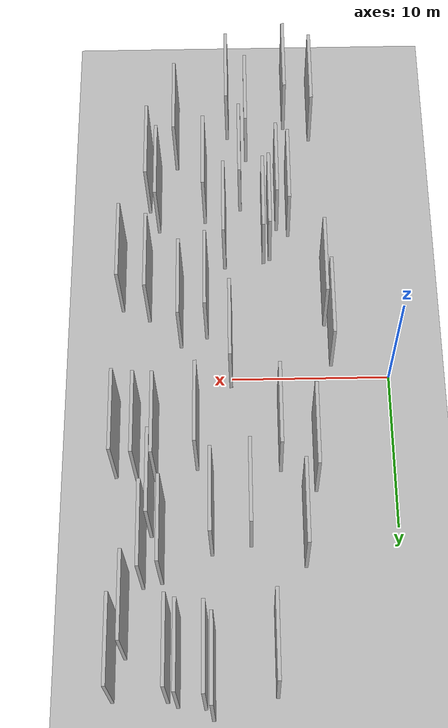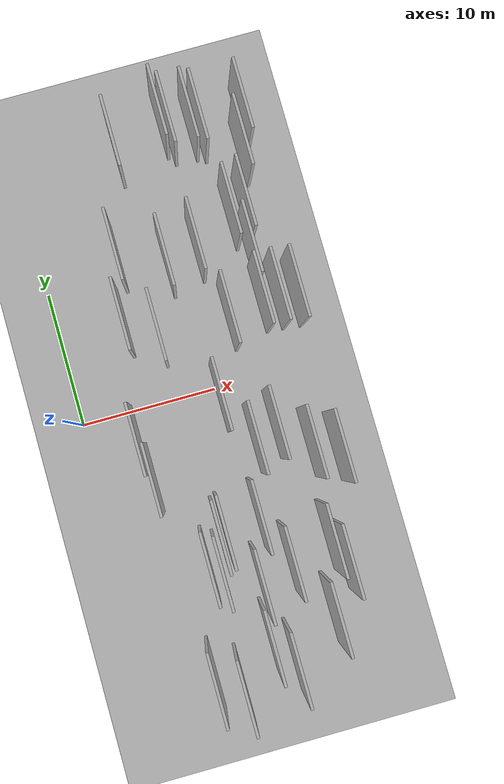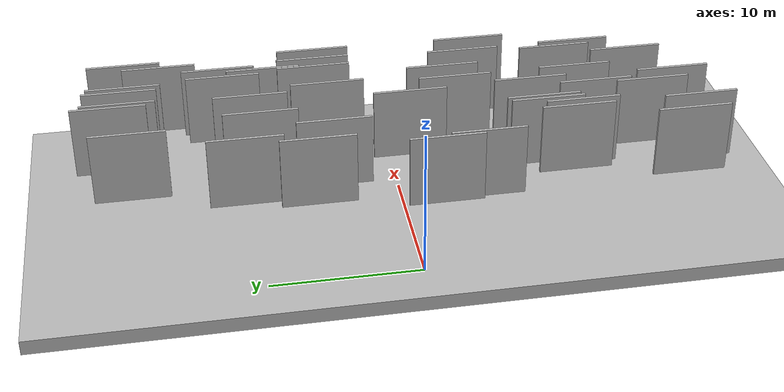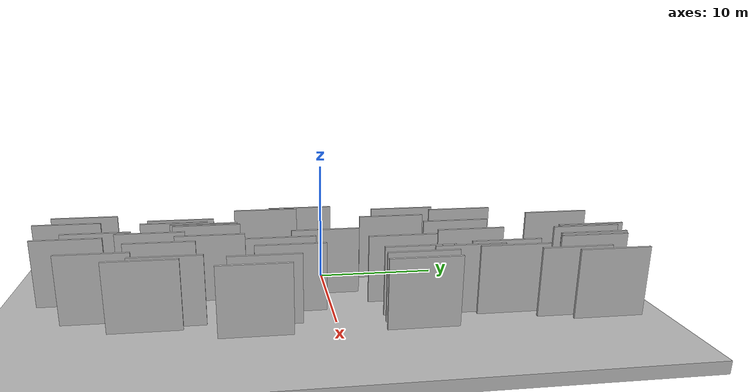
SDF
<?xml version="1.0" encoding="utf-8"?>

<sdf version="1.6">

   <world name="default">

      <gui fullscreen="0">

         <camera name="user_camera">

            <pose>-15 0 4.57585 0 0 0</pose>

            <view_controller>orbit</view_controller>

         </camera>

      </gui>

      <scene>

         <sky>

           <clouds>

             <speed>12</speed>

           </clouds>

         </sky>

         <ambient>0.4 0.4 0.4 1</ambient>

         <background>0.7 0.7 0.7 1</background>

         <shadows>1</shadows>

      </scene>

      <gravity>0 0 -9.8066</gravity>

      <magnetic_field>6e-06 2.3e-05 -4.2e-05</magnetic_field>

      <physics default="0" name="default_physics" type="ode">

         <ode>

            <solver>

               <type>quick</type>

               <iters>10</iters>

               <sor>1.0</sor>

               <use_dynamic_moi_rescaling>0</use_dynamic_moi_rescaling>

            </solver>

            <constraints>

               <cfm>0</cfm>

               <erp>0.2</erp>

               <contact_max_correcting_vel>100</contact_max_correcting_vel>

               <contact_surface_layer>0.001</contact_surface_layer>

            </constraints>

         </ode>

         <max_step_size>0.004</max_step_size>

         <real_time_factor>1</real_time_factor>

         <real_time_update_rate>250</real_time_update_rate>

      </physics>

      <light name="sun" type="directional">

         <cast_shadows>1</cast_shadows>

         <pose>0 0 10 0 0 0</pose>

         <diffuse>0.8 0.8 0.8 1</diffuse>

         <specular>0.2 0.2 0.2 1</specular>

         <attenuation>

            <range>1000</range>

            <constant>0.9</constant>

            <linear>0.01</linear>

            <quadratic>0.001</quadratic>

         </attenuation>

         <direction>-0.5 0.1 -0.9</direction>

      </light>

      <include>

         <name>ground_plane_1</name>

         <uri>model://HANNAS_ground_plane</uri>

         <pose>0 0 0  0 0 0</pose>

      </include>

      <include>

         <name>ground_plane_2</name>

         <uri>model://HANNAS_ground_plane</uri>

         <pose>100 0 0  0 0 0</pose>

      </include>

      <model name="HANNAS_wall_1">

         <static>1</static>

         <pose frame="">5.8081 10.5907 2.5 0.000000 0.000000 1.570796</pose>

         <link name="link">

            <pose frame="">0 0 2.50 0 0 0</pose>

            <collision name="collision">

               <geometry>

                  <box>

                     <size>5.00 0.2 5.00</size>

                  </box>

               </geometry>

               <max_contacts>10</max_contacts>

               <surface>

                  <contact>

                     <ode/>

                  </contact>

                  <bounce/>

                  <friction>

                     <torsional>

                        <ode/>

                     </torsional>

                     <ode/>

                  </friction>

               </surface>

            </collision>

            <visual name="visual">

               <cast_shadows>0</cast_shadows>

               <geometry>

                  <box>

                     <size>5.00 0.2 5.00</size>

                  </box>

               </geometry>

               <material>

                  <script>

                     <uri>model://HANNAS_wall/materials/scripts</uri>

                     <uri>model://HANNAS_wall/materials/textures</uri>

                     <name>vrc/HANNAS_wall</name>

                  </script>

               </material>

            </visual>

            <self_collide>0</self_collide>

            <enable_wind>0</enable_wind>

            <kinematic>0</kinematic>

         </link>

      </model>

      <model name="HANNAS_wall_2">

         <static>1</static>

         <pose frame="">11.6229 18.5707 2.5 0.000000 0.000000 1.570796</pose>

         <link name="link">

            <pose frame="">0 0 2.50 0 0 0</pose>

            <collision name="collision">

               <geometry>

                  <box>

                     <size>5.00 0.2 5.00</size>

                  </box>

               </geometry>

               <max_contacts>10</max_contacts>

               <surface>

                  <contact>

                     <ode/>

                  </contact>

                  <bounce/>

                  <friction>

                     <torsional>

                        <ode/>

                     </torsional>

                     <ode/>

                  </friction>

               </surface>

            </collision>

            <visual name="visual">

               <cast_shadows>0</cast_shadows>

               <geometry>

                  <box>

                     <size>5.00 0.2 5.00</size>

                  </box>

               </geometry>

               <material>

                  <script>

                     <uri>model://HANNAS_wall/materials/scripts</uri>

                     <uri>model://HANNAS_wall/materials/textures</uri>

                     <name>vrc/HANNAS_wall</name>

                  </script>

               </material>

            </visual>

            <self_collide>0</self_collide>

            <enable_wind>0</enable_wind>

            <kinematic>0</kinematic>

         </link>

      </model>

      <model name="HANNAS_wall_3">

         <static>1</static>

         <pose frame="">10.0517 -0.8519 2.5 0.000000 0.000000 1.570796</pose>

         <link name="link">

            <pose frame="">0 0 2.50 0 0 0</pose>

            <collision name="collision">

               <geometry>

                  <box>

                     <size>5.00 0.2 5.00</size>

                  </box>

               </geometry>

               <max_contacts>10</max_contacts>

               <surface>

                  <contact>

                     <ode/>

                  </contact>

                  <bounce/>

                  <friction>

                     <torsional>

                        <ode/>

                     </torsional>

                     <ode/>

                  </friction>

               </surface>

            </collision>

            <visual name="visual">

               <cast_shadows>0</cast_shadows>

               <geometry>

                  <box>

                     <size>5.00 0.2 5.00</size>

                  </box>

               </geometry>

               <material>

                  <script>

                     <uri>model://HANNAS_wall/materials/scripts</uri>

                     <uri>model://HANNAS_wall/materials/textures</uri>

                     <name>vrc/HANNAS_wall</name>

                  </script>

               </material>

            </visual>

            <self_collide>0</self_collide>

            <enable_wind>0</enable_wind>

            <kinematic>0</kinematic>

         </link>

      </model>

      <model name="HANNAS_wall_4">

         <static>1</static>

         <pose frame="">11.1998 19.1837 2.5 0.000000 0.000000 1.570796</pose>

         <link name="link">

            <pose frame="">0 0 2.50 0 0 0</pose>

            <collision name="collision">

               <geometry>

                  <box>

                     <size>5.00 0.2 5.00</size>

                  </box>

               </geometry>

               <max_contacts>10</max_contacts>

               <surface>

                  <contact>

                     <ode/>

                  </contact>

                  <bounce/>

                  <friction>

                     <torsional>

                        <ode/>

                     </torsional>

                     <ode/>

                  </friction>

               </surface>

            </collision>

            <visual name="visual">

               <cast_shadows>0</cast_shadows>

               <geometry>

                  <box>

                     <size>5.00 0.2 5.00</size>

                  </box>

               </geometry>

               <material>

                  <script>

                     <uri>model://HANNAS_wall/materials/scripts</uri>

                     <uri>model://HANNAS_wall/materials/textures</uri>

                     <name>vrc/HANNAS_wall</name>

                  </script>

               </material>

            </visual>

            <self_collide>0</self_collide>

            <enable_wind>0</enable_wind>

            <kinematic>0</kinematic>

         </link>

      </model>

      <model name="HANNAS_wall_5">

         <static>1</static>

         <pose frame="">7.8874 -9.5599 2.5 0.000000 0.000000 1.570796</pose>

         <link name="link">

            <pose frame="">0 0 2.50 0 0 0</pose>

            <collision name="collision">

               <geometry>

                  <box>

                     <size>5.00 0.2 5.00</size>

                  </box>

               </geometry>

               <max_contacts>10</max_contacts>

               <surface>

                  <contact>

                     <ode/>

                  </contact>

                  <bounce/>

                  <friction>

                     <torsional>

                        <ode/>

                     </torsional>

                     <ode/>

                  </friction>

               </surface>

            </collision>

            <visual name="visual">

               <cast_shadows>0</cast_shadows>

               <geometry>

                  <box>

                     <size>5.00 0.2 5.00</size>

                  </box>

               </geometry>

               <material>

                  <script>

                     <uri>model://HANNAS_wall/materials/scripts</uri>

                     <uri>model://HANNAS_wall/materials/textures</uri>

                     <name>vrc/HANNAS_wall</name>

                  </script>

               </material>

            </visual>

            <self_collide>0</self_collide>

            <enable_wind>0</enable_wind>

            <kinematic>0</kinematic>

         </link>

      </model>

      <model name="HANNAS_wall_6">

         <static>1</static>

         <pose frame="">11.2592 9.8154 2.5 0.000000 0.000000 1.570796</pose>

         <link name="link">

            <pose frame="">0 0 2.50 0 0 0</pose>

            <collision name="collision">

               <geometry>

                  <box>

                     <size>5.00 0.2 5.00</size>

                  </box>

               </geometry>

               <max_contacts>10</max_contacts>

               <surface>

                  <contact>

                     <ode/>

                  </contact>

                  <bounce/>

                  <friction>

                     <torsional>

                        <ode/>

                     </torsional>

                     <ode/>

                  </friction>

               </surface>

            </collision>

            <visual name="visual">

               <cast_shadows>0</cast_shadows>

               <geometry>

                  <box>

                     <size>5.00 0.2 5.00</size>

                  </box>

               </geometry>

               <material>

                  <script>

                     <uri>model://HANNAS_wall/materials/scripts</uri>

                     <uri>model://HANNAS_wall/materials/textures</uri>

                     <name>vrc/HANNAS_wall</name>

                  </script>

               </material>

            </visual>

            <self_collide>0</self_collide>

            <enable_wind>0</enable_wind>

            <kinematic>0</kinematic>

         </link>

      </model>

      <model name="HANNAS_wall_7">

         <static>1</static>

         <pose frame="">4.1478 -5.0018 2.5 0.000000 0.000000 1.570796</pose>

         <link name="link">

            <pose frame="">0 0 2.50 0 0 0</pose>

            <collision name="collision">

               <geometry>

                  <box>

                     <size>5.00 0.2 5.00</size>

                  </box>

               </geometry>

               <max_contacts>10</max_contacts>

               <surface>

                  <contact>

                     <ode/>

                  </contact>

                  <bounce/>

                  <friction>

                     <torsional>

                        <ode/>

                     </torsional>

                     <ode/>

                  </friction>

               </surface>

            </collision>

            <visual name="visual">

               <cast_shadows>0</cast_shadows>

               <geometry>

                  <box>

                     <size>5.00 0.2 5.00</size>

                  </box>

               </geometry>

               <material>

                  <script>

                     <uri>model://HANNAS_wall/materials/scripts</uri>

                     <uri>model://HANNAS_wall/materials/textures</uri>

                     <name>vrc/HANNAS_wall</name>

                  </script>

               </material>

            </visual>

            <self_collide>0</self_collide>

            <enable_wind>0</enable_wind>

            <kinematic>0</kinematic>

         </link>

      </model>

      <model name="HANNAS_wall_8">

         <static>1</static>

         <pose frame="">9.3452 -13.5568 2.5 0.000000 0.000000 1.570796</pose>

         <link name="link">

            <pose frame="">0 0 2.50 0 0 0</pose>

            <collision name="collision">

               <geometry>

                  <box>

                     <size>5.00 0.2 5.00</size>

                  </box>

               </geometry>

               <max_contacts>10</max_contacts>

               <surface>

                  <contact>

                     <ode/>

                  </contact>

                  <bounce/>

                  <friction>

                     <torsional>

                        <ode/>

                     </torsional>

                     <ode/>

                  </friction>

               </surface>

            </collision>

            <visual name="visual">

               <cast_shadows>0</cast_shadows>

               <geometry>

                  <box>

                     <size>5.00 0.2 5.00</size>

                  </box>

               </geometry>

               <material>

                  <script>

                     <uri>model://HANNAS_wall/materials/scripts</uri>

                     <uri>model://HANNAS_wall/materials/textures</uri>

                     <name>vrc/HANNAS_wall</name>

                  </script>

               </material>

            </visual>

            <self_collide>0</self_collide>

            <enable_wind>0</enable_wind>

            <kinematic>0</kinematic>

         </link>

      </model>

      <model name="HANNAS_wall_9">

         <static>1</static>

         <pose frame="">3.8382 -2.2054 2.5 0.000000 0.000000 1.570796</pose>

         <link name="link">

            <pose frame="">0 0 2.50 0 0 0</pose>

            <collision name="collision">

               <geometry>

                  <box>

                     <size>5.00 0.2 5.00</size>

                  </box>

               </geometry>

               <max_contacts>10</max_contacts>

               <surface>

                  <contact>

                     <ode/>

                  </contact>

                  <bounce/>

                  <friction>

                     <torsional>

                        <ode/>

                     </torsional>

                     <ode/>

                  </friction>

               </surface>

            </collision>

            <visual name="visual">

               <cast_shadows>0</cast_shadows>

               <geometry>

                  <box>

                     <size>5.00 0.2 5.00</size>

                  </box>

               </geometry>

               <material>

                  <script>

                     <uri>model://HANNAS_wall/materials/scripts</uri>

                     <uri>model://HANNAS_wall/materials/textures</uri>

                     <name>vrc/HANNAS_wall</name>

                  </script>

               </material>

            </visual>

            <self_collide>0</self_collide>

            <enable_wind>0</enable_wind>

            <kinematic>0</kinematic>

         </link>

      </model>

      <model name="HANNAS_wall_10">

         <static>1</static>

         <pose frame="">6.9938 -12.0329 2.5 0.000000 0.000000 1.570796</pose>

         <link name="link">

            <pose frame="">0 0 2.50 0 0 0</pose>

            <collision name="collision">

               <geometry>

                  <box>

                     <size>5.00 0.2 5.00</size>

                  </box>

               </geometry>

               <max_contacts>10</max_contacts>

               <surface>

                  <contact>

                     <ode/>

                  </contact>

                  <bounce/>

                  <friction>

                     <torsional>

                        <ode/>

                     </torsional>

                     <ode/>

                  </friction>

               </surface>

            </collision>

            <visual name="visual">

               <cast_shadows>0</cast_shadows>

               <geometry>

                  <box>

                     <size>5.00 0.2 5.00</size>

                  </box>

               </geometry>

               <material>

                  <script>

                     <uri>model://HANNAS_wall/materials/scripts</uri>

                     <uri>model://HANNAS_wall/materials/textures</uri>

                     <name>vrc/HANNAS_wall</name>

                  </script>

               </material>

            </visual>

            <self_collide>0</self_collide>

            <enable_wind>0</enable_wind>

            <kinematic>0</kinematic>

         </link>

      </model>

      <model name="HANNAS_wall_11">

         <static>1</static>

         <pose frame="">10.1374 -19.2209 2.5 0.000000 0.000000 1.570796</pose>

         <link name="link">

            <pose frame="">0 0 2.50 0 0 0</pose>

            <collision name="collision">

               <geometry>

                  <box>

                     <size>5.00 0.2 5.00</size>

                  </box>

               </geometry>

               <max_contacts>10</max_contacts>

               <surface>

                  <contact>

                     <ode/>

                  </contact>

                  <bounce/>

                  <friction>

                     <torsional>

                        <ode/>

                     </torsional>

                     <ode/>

                  </friction>

               </surface>

            </collision>

            <visual name="visual">

               <cast_shadows>0</cast_shadows>

               <geometry>

                  <box>

                     <size>5.00 0.2 5.00</size>

                  </box>

               </geometry>

               <material>

                  <script>

                     <uri>model://HANNAS_wall/materials/scripts</uri>

                     <uri>model://HANNAS_wall/materials/textures</uri>

                     <name>vrc/HANNAS_wall</name>

                  </script>

               </material>

            </visual>

            <self_collide>0</self_collide>

            <enable_wind>0</enable_wind>

            <kinematic>0</kinematic>

         </link>

      </model>

      <model name="HANNAS_wall_12">

         <static>1</static>

         <pose frame="">14.6214 -11.9846 2.5 0.000000 0.000000 1.570796</pose>

         <link name="link">

            <pose frame="">0 0 2.50 0 0 0</pose>

            <collision name="collision">

               <geometry>

                  <box>

                     <size>5.00 0.2 5.00</size>

                  </box>

               </geometry>

               <max_contacts>10</max_contacts>

               <surface>

                  <contact>

                     <ode/>

                  </contact>

                  <bounce/>

                  <friction>

                     <torsional>

                        <ode/>

                     </torsional>

                     <ode/>

                  </friction>

               </surface>

            </collision>

            <visual name="visual">

               <cast_shadows>0</cast_shadows>

               <geometry>

                  <box>

                     <size>5.00 0.2 5.00</size>

                  </box>

               </geometry>

               <material>

                  <script>

                     <uri>model://HANNAS_wall/materials/scripts</uri>

                     <uri>model://HANNAS_wall/materials/textures</uri>

                     <name>vrc/HANNAS_wall</name>

                  </script>

               </material>

            </visual>

            <self_collide>0</self_collide>

            <enable_wind>0</enable_wind>

            <kinematic>0</kinematic>

         </link>

      </model>

      <model name="HANNAS_wall_13">

         <static>1</static>

         <pose frame="">8.9719 9.3235 2.5 0.000000 0.000000 1.570796</pose>

         <link name="link">

            <pose frame="">0 0 2.50 0 0 0</pose>

            <collision name="collision">

               <geometry>

                  <box>

                     <size>5.00 0.2 5.00</size>

                  </box>

               </geometry>

               <max_contacts>10</max_contacts>

               <surface>

                  <contact>

                     <ode/>

                  </contact>

                  <bounce/>

                  <friction>

                     <torsional>

                        <ode/>

                     </torsional>

                     <ode/>

                  </friction>

               </surface>

            </collision>

            <visual name="visual">

               <cast_shadows>0</cast_shadows>

               <geometry>

                  <box>

                     <size>5.00 0.2 5.00</size>

                  </box>

               </geometry>

               <material>

                  <script>

                     <uri>model://HANNAS_wall/materials/scripts</uri>

                     <uri>model://HANNAS_wall/materials/textures</uri>

                     <name>vrc/HANNAS_wall</name>

                  </script>

               </material>

            </visual>

            <self_collide>0</self_collide>

            <enable_wind>0</enable_wind>

            <kinematic>0</kinematic>

         </link>

      </model>

      <model name="HANNAS_wall_14">

         <static>1</static>

         <pose frame="">10.3752 -9.2281 2.5 0.000000 0.000000 1.570796</pose>

         <link name="link">

            <pose frame="">0 0 2.50 0 0 0</pose>

            <collision name="collision">

               <geometry>

                  <box>

                     <size>5.00 0.2 5.00</size>

                  </box>

               </geometry>

               <max_contacts>10</max_contacts>

               <surface>

                  <contact>

                     <ode/>

                  </contact>

                  <bounce/>

                  <friction>

                     <torsional>

                        <ode/>

                     </torsional>

                     <ode/>

                  </friction>

               </surface>

            </collision>

            <visual name="visual">

               <cast_shadows>0</cast_shadows>

               <geometry>

                  <box>

                     <size>5.00 0.2 5.00</size>

                  </box>

               </geometry>

               <material>

                  <script>

                     <uri>model://HANNAS_wall/materials/scripts</uri>

                     <uri>model://HANNAS_wall/materials/textures</uri>

                     <name>vrc/HANNAS_wall</name>

                  </script>

               </material>

            </visual>

            <self_collide>0</self_collide>

            <enable_wind>0</enable_wind>

            <kinematic>0</kinematic>

         </link>

      </model>

      <model name="HANNAS_wall_15">

         <static>1</static>

         <pose frame="">13.7497 18.1765 2.5 0.000000 0.000000 1.570796</pose>

         <link name="link">

            <pose frame="">0 0 2.50 0 0 0</pose>

            <collision name="collision">

               <geometry>

                  <box>

                     <size>5.00 0.2 5.00</size>

                  </box>

               </geometry>

               <max_contacts>10</max_contacts>

               <surface>

                  <contact>

                     <ode/>

                  </contact>

                  <bounce/>

                  <friction>

                     <torsional>

                        <ode/>

                     </torsional>

                     <ode/>

                  </friction>

               </surface>

            </collision>

            <visual name="visual">

               <cast_shadows>0</cast_shadows>

               <geometry>

                  <box>

                     <size>5.00 0.2 5.00</size>

                  </box>

               </geometry>

               <material>

                  <script>

                     <uri>model://HANNAS_wall/materials/scripts</uri>

                     <uri>model://HANNAS_wall/materials/textures</uri>

                     <name>vrc/HANNAS_wall</name>

                  </script>

               </material>

            </visual>

            <self_collide>0</self_collide>

            <enable_wind>0</enable_wind>

            <kinematic>0</kinematic>

         </link>

      </model>

      <model name="HANNAS_wall_16">

         <static>1</static>

         <pose frame="">4.6476 -19.0045 2.5 0.000000 0.000000 1.570796</pose>

         <link name="link">

            <pose frame="">0 0 2.50 0 0 0</pose>

            <collision name="collision">

               <geometry>

                  <box>

                     <size>5.00 0.2 5.00</size>

                  </box>

               </geometry>

               <max_contacts>10</max_contacts>

               <surface>

                  <contact>

                     <ode/>

                  </contact>

                  <bounce/>

                  <friction>

                     <torsional>

                        <ode/>

                     </torsional>

                     <ode/>

                  </friction>

               </surface>

            </collision>

            <visual name="visual">

               <cast_shadows>0</cast_shadows>

               <geometry>

                  <box>

                     <size>5.00 0.2 5.00</size>

                  </box>

               </geometry>

               <material>

                  <script>

                     <uri>model://HANNAS_wall/materials/scripts</uri>

                     <uri>model://HANNAS_wall/materials/textures</uri>

                     <name>vrc/HANNAS_wall</name>

                  </script>

               </material>

            </visual>

            <self_collide>0</self_collide>

            <enable_wind>0</enable_wind>

            <kinematic>0</kinematic>

         </link>

      </model>

      <model name="HANNAS_wall_17">

         <static>1</static>

         <pose frame="">8.9086 -17.4246 2.5 0.000000 0.000000 1.570796</pose>

         <link name="link">

            <pose frame="">0 0 2.50 0 0 0</pose>

            <collision name="collision">

               <geometry>

                  <box>

                     <size>5.00 0.2 5.00</size>

                  </box>

               </geometry>

               <max_contacts>10</max_contacts>

               <surface>

                  <contact>

                     <ode/>

                  </contact>

                  <bounce/>

                  <friction>

                     <torsional>

                        <ode/>

                     </torsional>

                     <ode/>

                  </friction>

               </surface>

            </collision>

            <visual name="visual">

               <cast_shadows>0</cast_shadows>

               <geometry>

                  <box>

                     <size>5.00 0.2 5.00</size>

                  </box>

               </geometry>

               <material>

                  <script>

                     <uri>model://HANNAS_wall/materials/scripts</uri>

                     <uri>model://HANNAS_wall/materials/textures</uri>

                     <name>vrc/HANNAS_wall</name>

                  </script>

               </material>

            </visual>

            <self_collide>0</self_collide>

            <enable_wind>0</enable_wind>

            <kinematic>0</kinematic>

         </link>

      </model>

      <model name="HANNAS_wall_18">

         <static>1</static>

         <pose frame="">6.2576 -11.5523 2.5 0.000000 0.000000 1.570796</pose>

         <link name="link">

            <pose frame="">0 0 2.50 0 0 0</pose>

            <collision name="collision">

               <geometry>

                  <box>

                     <size>5.00 0.2 5.00</size>

                  </box>

               </geometry>

               <max_contacts>10</max_contacts>

               <surface>

                  <contact>

                     <ode/>

                  </contact>

                  <bounce/>

                  <friction>

                     <torsional>

                        <ode/>

                     </torsional>

                     <ode/>

                  </friction>

               </surface>

            </collision>

            <visual name="visual">

               <cast_shadows>0</cast_shadows>

               <geometry>

                  <box>

                     <size>5.00 0.2 5.00</size>

                  </box>

               </geometry>

               <material>

                  <script>

                     <uri>model://HANNAS_wall/materials/scripts</uri>

                     <uri>model://HANNAS_wall/materials/textures</uri>

                     <name>vrc/HANNAS_wall</name>

                  </script>

               </material>

            </visual>

            <self_collide>0</self_collide>

            <enable_wind>0</enable_wind>

            <kinematic>0</kinematic>

         </link>

      </model>

      <model name="HANNAS_wall_19">

         <static>1</static>

         <pose frame="">11.5374 -4.2189 2.5 0.000000 0.000000 1.570796</pose>

         <link name="link">

            <pose frame="">0 0 2.50 0 0 0</pose>

            <collision name="collision">

               <geometry>

                  <box>

                     <size>5.00 0.2 5.00</size>

                  </box>

               </geometry>

               <max_contacts>10</max_contacts>

               <surface>

                  <contact>

                     <ode/>

                  </contact>

                  <bounce/>

                  <friction>

                     <torsional>

                        <ode/>

                     </torsional>

                     <ode/>

                  </friction>

               </surface>

            </collision>

            <visual name="visual">

               <cast_shadows>0</cast_shadows>

               <geometry>

                  <box>

                     <size>5.00 0.2 5.00</size>

                  </box>

               </geometry>

               <material>

                  <script>

                     <uri>model://HANNAS_wall/materials/scripts</uri>

                     <uri>model://HANNAS_wall/materials/textures</uri>

                     <name>vrc/HANNAS_wall</name>

                  </script>

               </material>

            </visual>

            <self_collide>0</self_collide>

            <enable_wind>0</enable_wind>

            <kinematic>0</kinematic>

         </link>

      </model>

      <model name="HANNAS_wall_20">

         <static>1</static>

         <pose frame="">13.1738 18.4519 2.5 0.000000 0.000000 1.570796</pose>

         <link name="link">

            <pose frame="">0 0 2.50 0 0 0</pose>

            <collision name="collision">

               <geometry>

                  <box>

                     <size>5.00 0.2 5.00</size>

                  </box>

               </geometry>

               <max_contacts>10</max_contacts>

               <surface>

                  <contact>

                     <ode/>

                  </contact>

                  <bounce/>

                  <friction>

                     <torsional>

                        <ode/>

                     </torsional>

                     <ode/>

                  </friction>

               </surface>

            </collision>

            <visual name="visual">

               <cast_shadows>0</cast_shadows>

               <geometry>

                  <box>

                     <size>5.00 0.2 5.00</size>

                  </box>

               </geometry>

               <material>

                  <script>

                     <uri>model://HANNAS_wall/materials/scripts</uri>

                     <uri>model://HANNAS_wall/materials/textures</uri>

                     <name>vrc/HANNAS_wall</name>

                  </script>

               </material>

            </visual>

            <self_collide>0</self_collide>

            <enable_wind>0</enable_wind>

            <kinematic>0</kinematic>

         </link>

      </model>

      <model name="HANNAS_wall_21">

         <static>1</static>

         <pose frame="">13.5030 -16.8504 2.5 0.000000 0.000000 1.570796</pose>

         <link name="link">

            <pose frame="">0 0 2.50 0 0 0</pose>

            <collision name="collision">

               <geometry>

                  <box>

                     <size>5.00 0.2 5.00</size>

                  </box>

               </geometry>

               <max_contacts>10</max_contacts>

               <surface>

                  <contact>

                     <ode/>

                  </contact>

                  <bounce/>

                  <friction>

                     <torsional>

                        <ode/>

                     </torsional>

                     <ode/>

                  </friction>

               </surface>

            </collision>

            <visual name="visual">

               <cast_shadows>0</cast_shadows>

               <geometry>

                  <box>

                     <size>5.00 0.2 5.00</size>

                  </box>

               </geometry>

               <material>

                  <script>

                     <uri>model://HANNAS_wall/materials/scripts</uri>

                     <uri>model://HANNAS_wall/materials/textures</uri>

                     <name>vrc/HANNAS_wall</name>

                  </script>

               </material>

            </visual>

            <self_collide>0</self_collide>

            <enable_wind>0</enable_wind>

            <kinematic>0</kinematic>

         </link>

      </model>

      <model name="HANNAS_wall_22">

         <static>1</static>

         <pose frame="">15.1513 -5.4892 2.5 0.000000 0.000000 1.570796</pose>

         <link name="link">

            <pose frame="">0 0 2.50 0 0 0</pose>

            <collision name="collision">

               <geometry>

                  <box>

                     <size>5.00 0.2 5.00</size>

                  </box>

               </geometry>

               <max_contacts>10</max_contacts>

               <surface>

                  <contact>

                     <ode/>

                  </contact>

                  <bounce/>

                  <friction>

                     <torsional>

                        <ode/>

                     </torsional>

                     <ode/>

                  </friction>

               </surface>

            </collision>

            <visual name="visual">

               <cast_shadows>0</cast_shadows>

               <geometry>

                  <box>

                     <size>5.00 0.2 5.00</size>

                  </box>

               </geometry>

               <material>

                  <script>

                     <uri>model://HANNAS_wall/materials/scripts</uri>

                     <uri>model://HANNAS_wall/materials/textures</uri>

                     <name>vrc/HANNAS_wall</name>

                  </script>

               </material>

            </visual>

            <self_collide>0</self_collide>

            <enable_wind>0</enable_wind>

            <kinematic>0</kinematic>

         </link>

      </model>

      <model name="HANNAS_wall_23">

         <static>1</static>

         <pose frame="">14.1581 11.4555 2.5 0.000000 0.000000 1.570796</pose>

         <link name="link">

            <pose frame="">0 0 2.50 0 0 0</pose>

            <collision name="collision">

               <geometry>

                  <box>

                     <size>5.00 0.2 5.00</size>

                  </box>

               </geometry>

               <max_contacts>10</max_contacts>

               <surface>

                  <contact>

                     <ode/>

                  </contact>

                  <bounce/>

                  <friction>

                     <torsional>

                        <ode/>

                     </torsional>

                     <ode/>

                  </friction>

               </surface>

            </collision>

            <visual name="visual">

               <cast_shadows>0</cast_shadows>

               <geometry>

                  <box>

                     <size>5.00 0.2 5.00</size>

                  </box>

               </geometry>

               <material>

                  <script>

                     <uri>model://HANNAS_wall/materials/scripts</uri>

                     <uri>model://HANNAS_wall/materials/textures</uri>

                     <name>vrc/HANNAS_wall</name>

                  </script>

               </material>

            </visual>

            <self_collide>0</self_collide>

            <enable_wind>0</enable_wind>

            <kinematic>0</kinematic>

         </link>

      </model>

      <model name="HANNAS_wall_24">

         <static>1</static>

         <pose frame="">7.6390 17.9997 2.5 0.000000 0.000000 1.570796</pose>

         <link name="link">

            <pose frame="">0 0 2.50 0 0 0</pose>

            <collision name="collision">

               <geometry>

                  <box>

                     <size>5.00 0.2 5.00</size>

                  </box>

               </geometry>

               <max_contacts>10</max_contacts>

               <surface>

                  <contact>

                     <ode/>

                  </contact>

                  <bounce/>

                  <friction>

                     <torsional>

                        <ode/>

                     </torsional>

                     <ode/>

                  </friction>

               </surface>

            </collision>

            <visual name="visual">

               <cast_shadows>0</cast_shadows>

               <geometry>

                  <box>

                     <size>5.00 0.2 5.00</size>

                  </box>

               </geometry>

               <material>

                  <script>

                     <uri>model://HANNAS_wall/materials/scripts</uri>

                     <uri>model://HANNAS_wall/materials/textures</uri>

                     <name>vrc/HANNAS_wall</name>

                  </script>

               </material>

            </visual>

            <self_collide>0</self_collide>

            <enable_wind>0</enable_wind>

            <kinematic>0</kinematic>

         </link>

      </model>

      <model name="HANNAS_wall_25">

         <static>1</static>

         <pose frame="">14.5989 5.1652 2.5 0.000000 0.000000 1.570796</pose>

         <link name="link">

            <pose frame="">0 0 2.50 0 0 0</pose>

            <collision name="collision">

               <geometry>

                  <box>

                     <size>5.00 0.2 5.00</size>

                  </box>

               </geometry>

               <max_contacts>10</max_contacts>

               <surface>

                  <contact>

                     <ode/>

                  </contact>

                  <bounce/>

                  <friction>

                     <torsional>

                        <ode/>

                     </torsional>

                     <ode/>

                  </friction>

               </surface>

            </collision>

            <visual name="visual">

               <cast_shadows>0</cast_shadows>

               <geometry>

                  <box>

                     <size>5.00 0.2 5.00</size>

                  </box>

               </geometry>

               <material>

                  <script>

                     <uri>model://HANNAS_wall/materials/scripts</uri>

                     <uri>model://HANNAS_wall/materials/textures</uri>

                     <name>vrc/HANNAS_wall</name>

                  </script>

               </material>

            </visual>

            <self_collide>0</self_collide>

            <enable_wind>0</enable_wind>

            <kinematic>0</kinematic>

         </link>

      </model>

      <model name="HANNAS_wall_26">

         <static>1</static>

         <pose frame="">7.1387 4.6802 2.5 0.000000 0.000000 1.570796</pose>

         <link name="link">

            <pose frame="">0 0 2.50 0 0 0</pose>

            <collision name="collision">

               <geometry>

                  <box>

                     <size>5.00 0.2 5.00</size>

                  </box>

               </geometry>

               <max_contacts>10</max_contacts>

               <surface>

                  <contact>

                     <ode/>

                  </contact>

                  <bounce/>

                  <friction>

                     <torsional>

                        <ode/>

                     </torsional>

                     <ode/>

                  </friction>

               </surface>

            </collision>

            <visual name="visual">

               <cast_shadows>0</cast_shadows>

               <geometry>

                  <box>

                     <size>5.00 0.2 5.00</size>

                  </box>

               </geometry>

               <material>

                  <script>

                     <uri>model://HANNAS_wall/materials/scripts</uri>

                     <uri>model://HANNAS_wall/materials/textures</uri>

                     <name>vrc/HANNAS_wall</name>

                  </script>

               </material>

            </visual>

            <self_collide>0</self_collide>

            <enable_wind>0</enable_wind>

            <kinematic>0</kinematic>

         </link>

      </model>

      <model name="HANNAS_wall_27">

         <static>1</static>

         <pose frame="">16.8390 -6.2396 2.5 0.000000 0.000000 1.570796</pose>

         <link name="link">

            <pose frame="">0 0 2.50 0 0 0</pose>

            <collision name="collision">

               <geometry>

                  <box>

                     <size>5.00 0.2 5.00</size>

                  </box>

               </geometry>

               <max_contacts>10</max_contacts>

               <surface>

                  <contact>

                     <ode/>

                  </contact>

                  <bounce/>

                  <friction>

                     <torsional>

                        <ode/>

                     </torsional>

                     <ode/>

                  </friction>

               </surface>

            </collision>

            <visual name="visual">

               <cast_shadows>0</cast_shadows>

               <geometry>

                  <box>

                     <size>5.00 0.2 5.00</size>

                  </box>

               </geometry>

               <material>

                  <script>

                     <uri>model://HANNAS_wall/materials/scripts</uri>

                     <uri>model://HANNAS_wall/materials/textures</uri>

                     <name>vrc/HANNAS_wall</name>

                  </script>

               </material>

            </visual>

            <self_collide>0</self_collide>

            <enable_wind>0</enable_wind>

            <kinematic>0</kinematic>

         </link>

      </model>

      <model name="HANNAS_wall_28">

         <static>1</static>

         <pose frame="">6.3550 -19.9841 2.5 0.000000 0.000000 1.570796</pose>

         <link name="link">

            <pose frame="">0 0 2.50 0 0 0</pose>

            <collision name="collision">

               <geometry>

                  <box>

                     <size>5.00 0.2 5.00</size>

                  </box>

               </geometry>

               <max_contacts>10</max_contacts>

               <surface>

                  <contact>

                     <ode/>

                  </contact>

                  <bounce/>

                  <friction>

                     <torsional>

                        <ode/>

                     </torsional>

                     <ode/>

                  </friction>

               </surface>

            </collision>

            <visual name="visual">

               <cast_shadows>0</cast_shadows>

               <geometry>

                  <box>

                     <size>5.00 0.2 5.00</size>

                  </box>

               </geometry>

               <material>

                  <script>

                     <uri>model://HANNAS_wall/materials/scripts</uri>

                     <uri>model://HANNAS_wall/materials/textures</uri>

                     <name>vrc/HANNAS_wall</name>

                  </script>

               </material>

            </visual>

            <self_collide>0</self_collide>

            <enable_wind>0</enable_wind>

            <kinematic>0</kinematic>

         </link>

      </model>

      <model name="HANNAS_wall_29">

         <static>1</static>

         <pose frame="">15.7301 5.1016 2.5 0.000000 0.000000 1.570796</pose>

         <link name="link">

            <pose frame="">0 0 2.50 0 0 0</pose>

            <collision name="collision">

               <geometry>

                  <box>

                     <size>5.00 0.2 5.00</size>

                  </box>

               </geometry>

               <max_contacts>10</max_contacts>

               <surface>

                  <contact>

                     <ode/>

                  </contact>

                  <bounce/>

                  <friction>

                     <torsional>

                        <ode/>

                     </torsional>

                     <ode/>

                  </friction>

               </surface>

            </collision>

            <visual name="visual">

               <cast_shadows>0</cast_shadows>

               <geometry>

                  <box>

                     <size>5.00 0.2 5.00</size>

                  </box>

               </geometry>

               <material>

                  <script>

                     <uri>model://HANNAS_wall/materials/scripts</uri>

                     <uri>model://HANNAS_wall/materials/textures</uri>

                     <name>vrc/HANNAS_wall</name>

                  </script>

               </material>

            </visual>

            <self_collide>0</self_collide>

            <enable_wind>0</enable_wind>

            <kinematic>0</kinematic>

         </link>

      </model>

      <model name="HANNAS_wall_30">

         <static>1</static>

         <pose frame="">11.6366 -12.6639 2.5 0.000000 0.000000 1.570796</pose>

         <link name="link">

            <pose frame="">0 0 2.50 0 0 0</pose>

            <collision name="collision">

               <geometry>

                  <box>

                     <size>5.00 0.2 5.00</size>

                  </box>

               </geometry>

               <max_contacts>10</max_contacts>

               <surface>

                  <contact>

                     <ode/>

                  </contact>

                  <bounce/>

                  <friction>

                     <torsional>

                        <ode/>

                     </torsional>

                     <ode/>

                  </friction>

               </surface>

            </collision>

            <visual name="visual">

               <cast_shadows>0</cast_shadows>

               <geometry>

                  <box>

                     <size>5.00 0.2 5.00</size>

                  </box>

               </geometry>

               <material>

                  <script>

                     <uri>model://HANNAS_wall/materials/scripts</uri>

                     <uri>model://HANNAS_wall/materials/textures</uri>

                     <name>vrc/HANNAS_wall</name>

                  </script>

               </material>

            </visual>

            <self_collide>0</self_collide>

            <enable_wind>0</enable_wind>

            <kinematic>0</kinematic>

         </link>

      </model>

      <model name="HANNAS_wall_31">

         <static>1</static>

         <pose frame="">14.8103 8.6397 2.5 0.000000 0.000000 1.570796</pose>

         <link name="link">

            <pose frame="">0 0 2.50 0 0 0</pose>

            <collision name="collision">

               <geometry>

                  <box>

                     <size>5.00 0.2 5.00</size>

                  </box>

               </geometry>

               <max_contacts>10</max_contacts>

               <surface>

                  <contact>

                     <ode/>

                  </contact>

                  <bounce/>

                  <friction>

                     <torsional>

                        <ode/>

                     </torsional>

                     <ode/>

                  </friction>

               </surface>

            </collision>

            <visual name="visual">

               <cast_shadows>0</cast_shadows>

               <geometry>

                  <box>

                     <size>5.00 0.2 5.00</size>

                  </box>

               </geometry>

               <material>

                  <script>

                     <uri>model://HANNAS_wall/materials/scripts</uri>

                     <uri>model://HANNAS_wall/materials/textures</uri>

                     <name>vrc/HANNAS_wall</name>

                  </script>

               </material>

            </visual>

            <self_collide>0</self_collide>

            <enable_wind>0</enable_wind>

            <kinematic>0</kinematic>

         </link>

      </model>

      <model name="HANNAS_wall_32">

         <static>1</static>

         <pose frame="">12.1252 4.5123 2.5 0.000000 0.000000 1.570796</pose>

         <link name="link">

            <pose frame="">0 0 2.50 0 0 0</pose>

            <collision name="collision">

               <geometry>

                  <box>

                     <size>5.00 0.2 5.00</size>

                  </box>

               </geometry>

               <max_contacts>10</max_contacts>

               <surface>

                  <contact>

                     <ode/>

                  </contact>

                  <bounce/>

                  <friction>

                     <torsional>

                        <ode/>

                     </torsional>

                     <ode/>

                  </friction>

               </surface>

            </collision>

            <visual name="visual">

               <cast_shadows>0</cast_shadows>

               <geometry>

                  <box>

                     <size>5.00 0.2 5.00</size>

                  </box>

               </geometry>

               <material>

                  <script>

                     <uri>model://HANNAS_wall/materials/scripts</uri>

                     <uri>model://HANNAS_wall/materials/textures</uri>

                     <name>vrc/HANNAS_wall</name>

                  </script>

               </material>

            </visual>

            <self_collide>0</self_collide>

            <enable_wind>0</enable_wind>

            <kinematic>0</kinematic>

         </link>

      </model>

      <model name="HANNAS_wall_33">

         <static>1</static>

         <pose frame="">15.2330 11.7071 2.5 0.000000 0.000000 1.570796</pose>

         <link name="link">

            <pose frame="">0 0 2.50 0 0 0</pose>

            <collision name="collision">

               <geometry>

                  <box>

                     <size>5.00 0.2 5.00</size>

                  </box>

               </geometry>

               <max_contacts>10</max_contacts>

               <surface>

                  <contact>

                     <ode/>

                  </contact>

                  <bounce/>

                  <friction>

                     <torsional>

                        <ode/>

                     </torsional>

                     <ode/>

                  </friction>

               </surface>

            </collision>

            <visual name="visual">

               <cast_shadows>0</cast_shadows>

               <geometry>

                  <box>

                     <size>5.00 0.2 5.00</size>

                  </box>

               </geometry>

               <material>

                  <script>

                     <uri>model://HANNAS_wall/materials/scripts</uri>

                     <uri>model://HANNAS_wall/materials/textures</uri>

                     <name>vrc/HANNAS_wall</name>

                  </script>

               </material>

            </visual>

            <self_collide>0</self_collide>

            <enable_wind>0</enable_wind>

            <kinematic>0</kinematic>

         </link>

      </model>

      <model name="HANNAS_wall_34">

         <static>1</static>

         <pose frame="">13.1419 -3.6338 2.5 0.000000 0.000000 1.570796</pose>

         <link name="link">

            <pose frame="">0 0 2.50 0 0 0</pose>

            <collision name="collision">

               <geometry>

                  <box>

                     <size>5.00 0.2 5.00</size>

                  </box>

               </geometry>

               <max_contacts>10</max_contacts>

               <surface>

                  <contact>

                     <ode/>

                  </contact>

                  <bounce/>

                  <friction>

                     <torsional>

                        <ode/>

                     </torsional>

                     <ode/>

                  </friction>

               </surface>

            </collision>

            <visual name="visual">

               <cast_shadows>0</cast_shadows>

               <geometry>

                  <box>

                     <size>5.00 0.2 5.00</size>

                  </box>

               </geometry>

               <material>

                  <script>

                     <uri>model://HANNAS_wall/materials/scripts</uri>

                     <uri>model://HANNAS_wall/materials/textures</uri>

                     <name>vrc/HANNAS_wall</name>

                  </script>

               </material>

            </visual>

            <self_collide>0</self_collide>

            <enable_wind>0</enable_wind>

            <kinematic>0</kinematic>

         </link>

      </model>

      <model name="HANNAS_wall_35">

         <static>1</static>

         <pose frame="">16.9671 4.9523 2.5 0.000000 0.000000 1.570796</pose>

         <link name="link">

            <pose frame="">0 0 2.50 0 0 0</pose>

            <collision name="collision">

               <geometry>

                  <box>

                     <size>5.00 0.2 5.00</size>

                  </box>

               </geometry>

               <max_contacts>10</max_contacts>

               <surface>

                  <contact>

                     <ode/>

                  </contact>

                  <bounce/>

                  <friction>

                     <torsional>

                        <ode/>

                     </torsional>

                     <ode/>

                  </friction>

               </surface>

            </collision>

            <visual name="visual">

               <cast_shadows>0</cast_shadows>

               <geometry>

                  <box>

                     <size>5.00 0.2 5.00</size>

                  </box>

               </geometry>

               <material>

                  <script>

                     <uri>model://HANNAS_wall/materials/scripts</uri>

                     <uri>model://HANNAS_wall/materials/textures</uri>

                     <name>vrc/HANNAS_wall</name>

                  </script>

               </material>

            </visual>

            <self_collide>0</self_collide>

            <enable_wind>0</enable_wind>

            <kinematic>0</kinematic>

         </link>

      </model>

      <model name="HANNAS_wall_36">

         <static>1</static>

         <pose frame="">7.4927 -9.7757 2.5 0.000000 0.000000 1.570796</pose>

         <link name="link">

            <pose frame="">0 0 2.50 0 0 0</pose>

            <collision name="collision">

               <geometry>

                  <box>

                     <size>5.00 0.2 5.00</size>

                  </box>

               </geometry>

               <max_contacts>10</max_contacts>

               <surface>

                  <contact>

                     <ode/>

                  </contact>

                  <bounce/>

                  <friction>

                     <torsional>

                        <ode/>

                     </torsional>

                     <ode/>

                  </friction>

               </surface>

            </collision>

            <visual name="visual">

               <cast_shadows>0</cast_shadows>

               <geometry>

                  <box>

                     <size>5.00 0.2 5.00</size>

                  </box>

               </geometry>

               <material>

                  <script>

                     <uri>model://HANNAS_wall/materials/scripts</uri>

                     <uri>model://HANNAS_wall/materials/textures</uri>

                     <name>vrc/HANNAS_wall</name>

                  </script>

               </material>

            </visual>

            <self_collide>0</self_collide>

            <enable_wind>0</enable_wind>

            <kinematic>0</kinematic>

         </link>

      </model>

      <model name="HANNAS_wall_37">

         <static>1</static>

         <pose frame="">16.1752 15.7163 2.5 0.000000 0.000000 1.570796</pose>

         <link name="link">

            <pose frame="">0 0 2.50 0 0 0</pose>

            <collision name="collision">

               <geometry>

                  <box>

                     <size>5.00 0.2 5.00</size>

                  </box>

               </geometry>

               <max_contacts>10</max_contacts>

               <surface>

                  <contact>

                     <ode/>

                  </contact>

                  <bounce/>

                  <friction>

                     <torsional>

                        <ode/>

                     </torsional>

                     <ode/>

                  </friction>

               </surface>

            </collision>

            <visual name="visual">

               <cast_shadows>0</cast_shadows>

               <geometry>

                  <box>

                     <size>5.00 0.2 5.00</size>

                  </box>

               </geometry>

               <material>

                  <script>

                     <uri>model://HANNAS_wall/materials/scripts</uri>

                     <uri>model://HANNAS_wall/materials/textures</uri>

                     <name>vrc/HANNAS_wall</name>

                  </script>

               </material>

            </visual>

            <self_collide>0</self_collide>

            <enable_wind>0</enable_wind>

            <kinematic>0</kinematic>

         </link>

      </model>

      <model name="HANNAS_wall_38">

         <static>1</static>

         <pose frame="">16.8327 18.0989 2.5 0.000000 0.000000 1.570796</pose>

         <link name="link">

            <pose frame="">0 0 2.50 0 0 0</pose>

            <collision name="collision">

               <geometry>

                  <box>

                     <size>5.00 0.2 5.00</size>

                  </box>

               </geometry>

               <max_contacts>10</max_contacts>

               <surface>

                  <contact>

                     <ode/>

                  </contact>

                  <bounce/>

                  <friction>

                     <torsional>

                        <ode/>

                     </torsional>

                     <ode/>

                  </friction>

               </surface>

            </collision>

            <visual name="visual">

               <cast_shadows>0</cast_shadows>

               <geometry>

                  <box>

                     <size>5.00 0.2 5.00</size>

                  </box>

               </geometry>

               <material>

                  <script>

                     <uri>model://HANNAS_wall/materials/scripts</uri>

                     <uri>model://HANNAS_wall/materials/textures</uri>

                     <name>vrc/HANNAS_wall</name>

                  </script>

               </material>

            </visual>

            <self_collide>0</self_collide>

            <enable_wind>0</enable_wind>

            <kinematic>0</kinematic>

         </link>

      </model>

      <model name="HANNAS_wall_39">

         <static>1</static>

         <pose frame="">15.2389 -13.5103 2.5 0.000000 0.000000 1.570796</pose>

         <link name="link">

            <pose frame="">0 0 2.50 0 0 0</pose>

            <collision name="collision">

               <geometry>

                  <box>

                     <size>5.00 0.2 5.00</size>

                  </box>

               </geometry>

               <max_contacts>10</max_contacts>

               <surface>

                  <contact>

                     <ode/>

                  </contact>

                  <bounce/>

                  <friction>

                     <torsional>

                        <ode/>

                     </torsional>

                     <ode/>

                  </friction>

               </surface>

            </collision>

            <visual name="visual">

               <cast_shadows>0</cast_shadows>

               <geometry>

                  <box>

                     <size>5.00 0.2 5.00</size>

                  </box>

               </geometry>

               <material>

                  <script>

                     <uri>model://HANNAS_wall/materials/scripts</uri>

                     <uri>model://HANNAS_wall/materials/textures</uri>

                     <name>vrc/HANNAS_wall</name>

                  </script>

               </material>

            </visual>

            <self_collide>0</self_collide>

            <enable_wind>0</enable_wind>

            <kinematic>0</kinematic>

         </link>

      </model>

      <model name="HANNAS_wall_40">

         <static>1</static>

         <pose frame="">5.0536 5.9921 2.5 0.000000 0.000000 1.570796</pose>

         <link name="link">

            <pose frame="">0 0 2.50 0 0 0</pose>

            <collision name="collision">

               <geometry>

                  <box>

                     <size>5.00 0.2 5.00</size>

                  </box>

               </geometry>

               <max_contacts>10</max_contacts>

               <surface>

                  <contact>

                     <ode/>

                  </contact>

                  <bounce/>

                  <friction>

                     <torsional>

                        <ode/>

                     </torsional>

                     <ode/>

                  </friction>

               </surface>

            </collision>

            <visual name="visual">

               <cast_shadows>0</cast_shadows>

               <geometry>

                  <box>

                     <size>5.00 0.2 5.00</size>

                  </box>

               </geometry>

               <material>

                  <script>

                     <uri>model://HANNAS_wall/materials/scripts</uri>

                     <uri>model://HANNAS_wall/materials/textures</uri>

                     <name>vrc/HANNAS_wall</name>

                  </script>

               </material>

            </visual>

            <self_collide>0</self_collide>

            <enable_wind>0</enable_wind>

            <kinematic>0</kinematic>

         </link>

      </model>

   </world>

</sdf>
